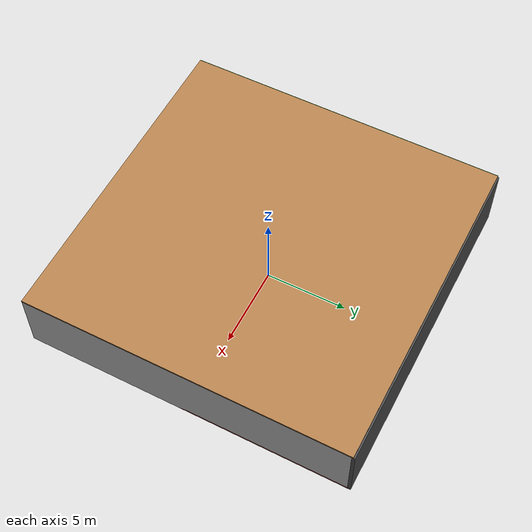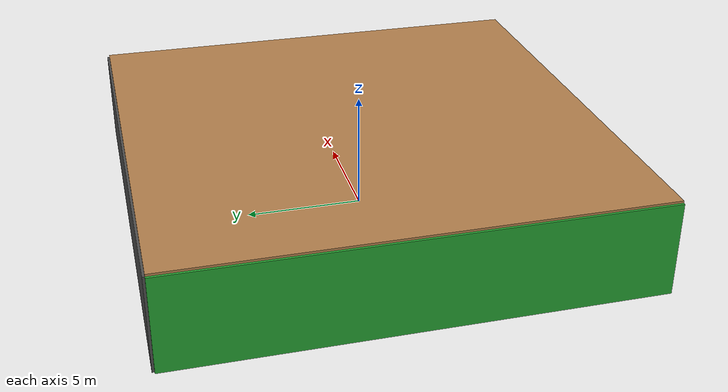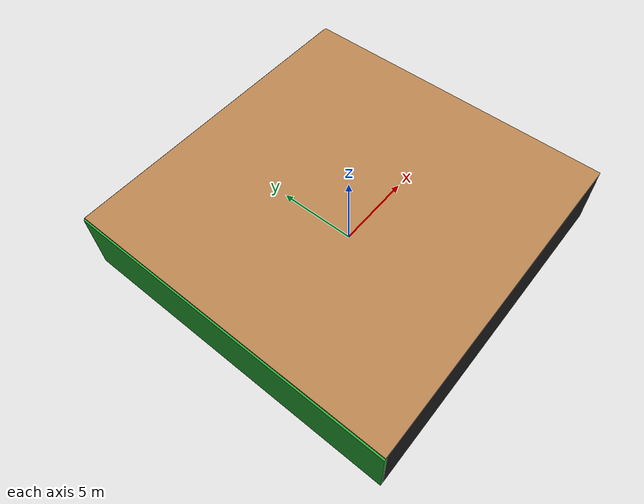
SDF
<sdf version="1.4">
 <world name="default">
  <physics type="ode">
   <max_step_size>0.001</max_step_size>
   <real_time_factor>1</real_time_factor>
   <real_time_update_rate>1000</real_time_update_rate>
   <gravity>0 0 -9.8</gravity>
  </physics>
  <scene><ambient>0.4 0.4 0.4 1</ambient><background>0.7 0.7 0.7 1</background><shadows>1</shadows></scene>
  <model name="Surrounding">
   <static>1</static>
   <link name="Ceiling">
    <collision name="Ceiling_Collision"><geometry><box><size>20 20 0.1</size></box></geometry></collision>
    <visual name="Ceiling_Visual">
     <geometry><box><size>20 20 0.1</size></box></geometry>
     <material>
      <script><uri>file://media/materials/scripts/gazebo.material</uri><name>Gazebo/WoodPallet</name></script>
     </material>
    </visual>
    <pose>0 0 4.05 0 0 0</pose>
   </link>
   <link name="Wall_South">
    <collision name="Wall_South_Collision">
     <geometry><box><size>20 0 4</size></box></geometry>
     <pose>0 0 2 0 -0 0</pose>
    </collision>
    <visual name="Wall_South_Visual">
     <pose>0 0 2 0 -0 0</pose>
     <geometry><box><size>20 0 4</size></box></geometry>
     <material>
      <script><uri>file://media/materials/scripts/gazebo.material</uri><name>Gazebo/FlatBlack</name></script>
     </material>
    </visual>
    <velocity_decay><linear>0</linear><angular>0</angular></velocity_decay>
    <pose>0 -10 0 0 -0 0</pose>
   </link>
   <link name="Wall_East">
    <collision name="Wall_21_Collision">
     <geometry><box><size>20 0 4</size></box></geometry>
     <pose>0 0 2 0 -0 0</pose>
    </collision>
    <visual name="Wall_21_Visual">
     <pose>0 0 2 0 -0 0</pose>
     <geometry><box><size>20 0 4</size></box></geometry>
     <material>
      <script><uri>file://media/materials/scripts/gazebo.material</uri><name>Gazebo/LightOn</name></script>
     </material>
    </visual>
    <velocity_decay><linear>0</linear><angular>0</angular></velocity_decay>
    <pose>10 0 0 0 -0 1.5708</pose>
   </link>
   <link name="Wall_North">
    <collision name="Wall_22_Collision">
     <geometry><box><size>20 0.2 4</size></box></geometry>
     <pose>0 0 2 0 -0 0</pose>
    </collision>
    <visual name="Wall_22_Visual">
     <pose>0 0 2 0 -0 0</pose>
     <geometry><box><size>20 0.2 4</size></box></geometry>
     <material>
      <script><uri>file://media/materials/scripts/gazebo.material</uri><name>Gazebo/Road</name></script>
     </material>
    </visual>
    <velocity_decay><linear>0</linear><angular>0</angular></velocity_decay>
    <pose>0 10 0 0 -0 0</pose>
   </link>
   <link name="Wall_West">
    <collision name="Wall_23_Collision">
     <geometry><box><size>20 0.2 4</size></box></geometry>
     <pose>0 0 2 0 -0 0</pose>
    </collision>
    <visual name="Wall_23_Visual">
     <pose>0 0 2 0 -0 0</pose>
     <geometry><box><size>20 0.2 4</size></box></geometry>
     <material>
      <script><uri>file://media/materials/scripts/gazebo.material</uri><name>Gazebo/Green</name></script>
     </material>
    </visual>
    <velocity_decay><linear>0</linear><angular>0</angular></velocity_decay>
    <pose>-10 0 0 0 0 -1.5708</pose>
   </link>
   <link name="Ground_link">
    <collision name="collision">
     <pose>0 0 .05 0 -0 0</pose>
     <geometry><box><size>20 20 0.1</size></box></geometry>
    </collision>
    <visual name="visual">
     <pose>0 0 .05 0 -0 0</pose>
     <geometry><box><size>20 20 0.1</size></box></geometry>
     <material>
      <script><uri>file://media/materials/scripts/gazebo.material</uri><name>Gazebo/RedBright</name></script>
     </material>
    </visual>
   </link>
   <static>1</static>
  </model>
  <spherical_coordinates>
   <surface_model>EARTH_WGS84</surface_model>
   <latitude_deg>0</latitude_deg>
   <longitude_deg>0</longitude_deg>
   <elevation>0</elevation>
   <heading_deg>0</heading_deg>
  </spherical_coordinates>
  <light name="lightball_0" type="diffuse">
   <diffuse>0.8 0.8 0.8 1</diffuse>
   <specular>0.2 0.2 0.2 1</specular>
   <attenuation>
    <range>100</range>
    <constant>0.7</constant>
    <linear>0.01</linear>
    <quadratic>0.001</quadratic>
   </attenuation>
   <direction>-0.5 0.1 -0.9</direction>
   <pose>-6.30735794774 4.71660158458 3.8929448754 0 0 0</pose>
  </light>
  <light name="lightball_1" type="diffuse">
   <diffuse>0.8 0.8 0.8 1</diffuse>
   <specular>0.2 0.2 0.2 1</specular>
   <attenuation>
    <range>100</range>
    <constant>0.7</constant>
    <linear>0.01</linear>
    <quadratic>0.001</quadratic>
   </attenuation>
   <direction>-0.5 0.1 -0.9</direction>
   <pose>6.55305630799 -3.64393114016 2.67313115446 0 0 0</pose>
  </light>
  <light name="lightball_2" type="diffuse">
   <diffuse>0.8 0.8 0.8 1</diffuse>
   <specular>0.2 0.2 0.2 1</specular>
   <attenuation>
    <range>100</range>
    <constant>0.7</constant>
    <linear>0.01</linear>
    <quadratic>0.001</quadratic>
   </attenuation>
   <direction>-0.5 0.1 -0.9</direction>
   <pose>-4.1576568086 -0.455125290033 2.01649620736 0 0 0</pose>
  </light>
  <light name="lightball_3" type="diffuse">
   <diffuse>0.8 0.8 0.8 1</diffuse>
   <specular>0.2 0.2 0.2 1</specular>
   <attenuation>
    <range>100</range>
    <constant>0.7</constant>
    <linear>0.01</linear>
    <quadratic>0.001</quadratic>
   </attenuation>
   <direction>-0.5 0.1 -0.9</direction>
   <pose>-0.813943308636 -5.85440108372 1.05148710658 0 0 0</pose>
  </light>
  <light name="lightball_4" type="diffuse">
   <diffuse>0.8 0.8 0.8 1</diffuse>
   <specular>0.2 0.2 0.2 1</specular>
   <attenuation>
    <range>100</range>
    <constant>0.7</constant>
    <linear>0.01</linear>
    <quadratic>0.001</quadratic>
   </attenuation>
   <direction>-0.5 0.1 -0.9</direction>
   <pose>8.11561893418 4.57595022691 1.81444800604 0 0 0</pose>
  </light>
  <light name="lightball_5" type="diffuse">
   <diffuse>0.8 0.8 0.8 1</diffuse>
   <specular>0.2 0.2 0.2 1</specular>
   <attenuation>
    <range>100</range>
    <constant>0.7</constant>
    <linear>0.01</linear>
    <quadratic>0.001</quadratic>
   </attenuation>
   <direction>-0.5 0.1 -0.9</direction>
   <pose>6.28619449427 -0.260566322831 1.86997962033 0 0 0</pose>
  </light>
  <include><uri>model://table</uri><pose>-3.36432813531 -7.91257573343 0 0 0 1.85739638257</pose></include>
  <include><uri>model://cabinet</uri><pose>-2.65396528884 -7.65497919755 0 0 0 2.95474105145</pose></include>
  <include>
   <uri>model://textured_shapes</uri>
   <pose>-2.00356093531 1.27863380387 0 0 0 0.684298841198</pose>
  </include>
  <include><uri>model://cabinet</uri><pose>1.32879167634 0.814909771284 0 0 0 0.681103244335</pose></include>
 </world>
</sdf>

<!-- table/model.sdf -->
<sdf version="1.5">
  <model name="table">
    <static>true</static>
    <link name="link">
      <collision name="surface">
        <pose>0 0 1.0 0 0 0</pose>
        <geometry>
          <box>
            <size>1.5 0.8 0.03</size>
          </box>
        </geometry>
        <surface>
          <friction>
            <ode>
              <mu>0.6</mu>
              <mu2>0.6</mu2>
            </ode>
          </friction>
        </surface>
      </collision>
      <visual name="visual1">
        <pose>0 0 1.0 0 0 0</pose>
        <geometry>
          <box>
            <size>1.5 0.8 0.03</size>
          </box>
        </geometry>
        <material>
          <script>
            <uri>model://media/materials/scripts/gazebo.material</uri>
            <name>Gazebo/Wood</name>
          </script>
        </material>
      </visual>
      <collision name="front_left_leg">
        <pose>0.68 0.38 0.5 0 0 0</pose>
        <geometry>
          <cylinder>
            <radius>0.02</radius>
            <length>1.0</length>
          </cylinder>
        </geometry>
      </collision>
      <visual name="front_left_leg">
        <pose>0.68 0.38 0.5 0 0 0</pose>
        <geometry>
          <cylinder>
            <radius>0.02</radius>
            <length>1.0</length>
          </cylinder>
        </geometry>
        <material>
          <script>
            <uri>model://media/materials/scripts/gazebo.material</uri>
            <name>Gazebo/Grey</name>
          </script>
        </material>
      </visual>
      <collision name="front_right_leg">
        <pose>0.68 -0.38 0.5 0 0 0</pose>
        <geometry>
          <cylinder>
            <radius>0.02</radius>
            <length>1.0</length>
          </cylinder>
        </geometry>
      </collision>
      <visual name="front_right_leg">
        <pose>0.68 -0.38 0.5 0 0 0</pose>
        <geometry>
          <cylinder>
            <radius>0.02</radius>
            <length>1.0</length>
          </cylinder>
        </geometry>
        <material>
          <script>
            <uri>model://media/materials/scripts/gazebo.material</uri>
            <name>Gazebo/Grey</name>
          </script>
        </material>
      </visual>
      <collision name="back_right_leg">
        <pose>-0.68 -0.38 0.5 0 0 0</pose>
        <geometry>
          <cylinder>
            <radius>0.02</radius>
            <length>1.0</length>
          </cylinder>
        </geometry>
      </collision>
      <visual name="back_right_leg">
        <pose>-0.68 -0.38 0.5 0 0 0</pose>
        <geometry>
          <cylinder>
            <radius>0.02</radius>
            <length>1.0</length>
          </cylinder>
        </geometry>
        <material>
          <script>
            <uri>model://media/materials/scripts/gazebo.material</uri>
            <name>Gazebo/Grey</name>
          </script>
        </material>
      </visual>
      <collision name="back_left_leg">
        <pose>-0.68 0.38 0.5 0 0 0</pose>
        <geometry>
          <cylinder>
            <radius>0.02</radius>
            <length>1.0</length>
          </cylinder>
        </geometry>
      </collision>
      <visual name="back_left_leg">
        <pose>-0.68 0.38 0.5 0 0 0</pose>
        <geometry>
          <cylinder>
            <radius>0.02</radius>
            <length>1.0</length>
          </cylinder>
        </geometry>
        <material>
          <script>
            <uri>model://media/materials/scripts/gazebo.material</uri>
            <name>Gazebo/Grey</name>
          </script>
        </material>
      </visual>
    </link>
  </model>
</sdf>

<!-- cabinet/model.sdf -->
<sdf version="1.5">
  <model name="cabinet">
    <static>true</static>
    <link name="cabinet_bottom_plate">
      <inertial>
        <pose>0 0 -1 0 0 0</pose>
        <inertia>
          <ixx>2.050000</ixx>
          <ixy>0</ixy>
          <ixz>0</ixz>
          <iyy>2.050000</iyy>
          <iyz>0</iyz>
          <izz>2.050000</izz>
        </inertia>
        <mass>25.000000</mass>
      </inertial>
      <collision name="cabinet_bottom_plate_geom">
        <pose>0 0 0.010000 0 0 0</pose>
        <geometry>
          <box>
            <size>0.450000 0.450000 0.020000</size>
          </box>
        </geometry>
      </collision>
      <visual name="cabinet_bottom_plate_geom_visual">
        <pose>0 0 0.010000 0 0 0</pose>
        <geometry>
          <box>
            <size>0.450000 0.450000 0.020000</size>
          </box>
        </geometry>
        <material>
          <script>
            <uri>model://media/materials/scripts/gazebo.material</uri>
            <name>Gazebo/Wood</name>
          </script>
        </material>
      </visual>
      <collision name="cabinet_bottom_plate_geom_cabinet_back_plate">
        <pose>0.235000 0 0.510000 0 0 0</pose>
        <geometry>
          <box>
            <size>0.020000 0.450000 1.020000</size>
          </box>
        </geometry>
      </collision>
      <visual name="cabinet_bottom_plate_geom_cabinet_back_plate_visual">
        <pose>0.235000 0 0.510000 0 0 0</pose>
        <geometry>
          <box>
            <size>0.020000 0.450000 1.020000</size>
          </box>
        </geometry>
        <material>
          <script>
            <uri>model://media/materials/scripts/gazebo.material</uri>
            <name>Gazebo/Wood</name>
          </script>
        </material>
      </visual>
      <collision name="cabinet_bottom_plate_geom_cabinet_left_plate">
        <pose>0 0.235000 0.510000 0 0 0</pose>
        <geometry>
          <box>
            <size>0.450000 0.020000 1.020000</size>
          </box>
        </geometry>
      </collision>
      <visual name="cabinet_bottom_plate_geom_cabinet_left_plate_visual">
        <pose>0 0.235000 0.510000 0 0 0</pose>
        <geometry>
          <box>
            <size>0.450000 0.020000 1.020000</size>
          </box>
        </geometry>
        <material>
          <script>
            <uri>model://media/materials/scripts/gazebo.material</uri>
            <name>Gazebo/Wood</name>
          </script>
        </material>
      </visual>
      <collision name="cabinet_bottom_plate_geom_cabinet_middle_plate">
        <pose>0 0 0.510000 0 0 0</pose>
        <geometry>
          <box>
            <size>0.450000 0.450000 0.020000</size>
          </box>
        </geometry>
      </collision>
      <visual name="cabinet_bottom_plate_geom_cabinet_middle_plate_visual">
        <pose>0 0 0.510000 0 0 0</pose>
        <geometry>
          <box>
            <size>0.450000 0.450000 0.020000</size>
          </box>
        </geometry>
        <material>
          <script>
            <uri>model://media/materials/scripts/gazebo.material</uri>
            <name>Gazebo/Wood</name>
          </script>
        </material>
      </visual>
      <collision name="cabinet_bottom_plate_geom_cabinet_right_plate">
        <pose>0 -0.235000 0.510000 0 0 0</pose>
        <geometry>
          <box>
            <size>0.450000 0.020000 1.020000</size>
          </box>
        </geometry>
      </collision>
      <visual name="cabinet_bottom_plate_geom_cabinet_right_plate_visual">
        <pose>0 -0.235000 0.510000 0 0 0</pose>
        <geometry>
          <box>
            <size>0.450000 0.020000 1.020000</size>
          </box>
        </geometry>
        <material>
          <script>
            <uri>model://media/materials/scripts/gazebo.material</uri>
            <name>Gazebo/Wood</name>
          </script>
        </material>
      </visual>
      <collision name="cabinet_bottom_plate_geom_cabinet_top_plate">
        <pose>0 0 1.010000 0 0 0</pose>
        <geometry>
          <box>
            <size>0.450000 0.450000 0.020000</size>
          </box>
        </geometry>
      </collision>
      <visual name="cabinet_bottom_plate_geom_cabinet_top_plate_visual">
        <pose>0 0 1.010000 0 0 0</pose>
        <geometry>
          <box>
            <size>0.450000 0.450000 0.020000</size>
          </box>
        </geometry>
        <material>
          <script>
            <uri>model://media/materials/scripts/gazebo.material</uri>
            <name>Gazebo/Wood</name>
          </script>
        </material>
      </visual>
    </link>
  </model>
</sdf>

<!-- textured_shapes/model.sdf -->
<sdf version="1.6">
  <model name="textured_shapes">
    <pose>0 0 0.5 0 0 0</pose>
    <link name="box">
      <pose>0 -1.5 0 0 0 0</pose>
      <collision name="collision">
        <geometry>
          <box>
            <size>1 1 1</size>
          </box>
        </geometry>
      </collision>
      <visual name="visual">
        <geometry>
          <box>
            <size>1 1 1</size>
          </box>
        </geometry>
        <material>
          <script>
            <uri>model://../model_source/models/textured_shapes/materials/scripts</uri>
            <uri>model://../model_source/models/textured_shapes/materials/textures</uri>
            <name>TexturedShape/Squares</name>
          </script>
        </material>
      </visual>
    </link>
    <link name="sphere">
      <collision name="collision">
        <geometry>
          <sphere>
            <radius>0.5</radius>
          </sphere>
        </geometry>
      </collision>
      <visual name="visual">
        <geometry>
          <sphere>
            <radius>0.5</radius>
          </sphere>
        </geometry>
        <material>
          <script>
            <uri>model://../model_source/models/textured_shapes/materials/scripts</uri>
            <uri>model://../model_source/models/textured_shapes/materials/textures</uri>
            <name>TexturedShape/Squares</name>
          </script>
        </material>
      </visual>
    </link>
    <link name="cylinder">
      <pose>0 1.5 0 0 0 0</pose>
      <collision name="collision">
        <geometry>
          <cylinder>
            <radius>0.5</radius>
            <length>1</length>
          </cylinder>
        </geometry>
      </collision>
      <visual name="visual">
        <geometry>
          <cylinder>
            <radius>0.5</radius>
            <length>1</length>
          </cylinder>
        </geometry>
        <material>
          <script>
            <uri>model://../model_source/models/textured_shapes/materials/scripts</uri>
            <uri>model://../model_source/models/textured_shapes/materials/textures</uri>
            <name>TexturedShape/Squares</name>
          </script>
        </material>
      </visual>
    </link>
  </model>
</sdf>
